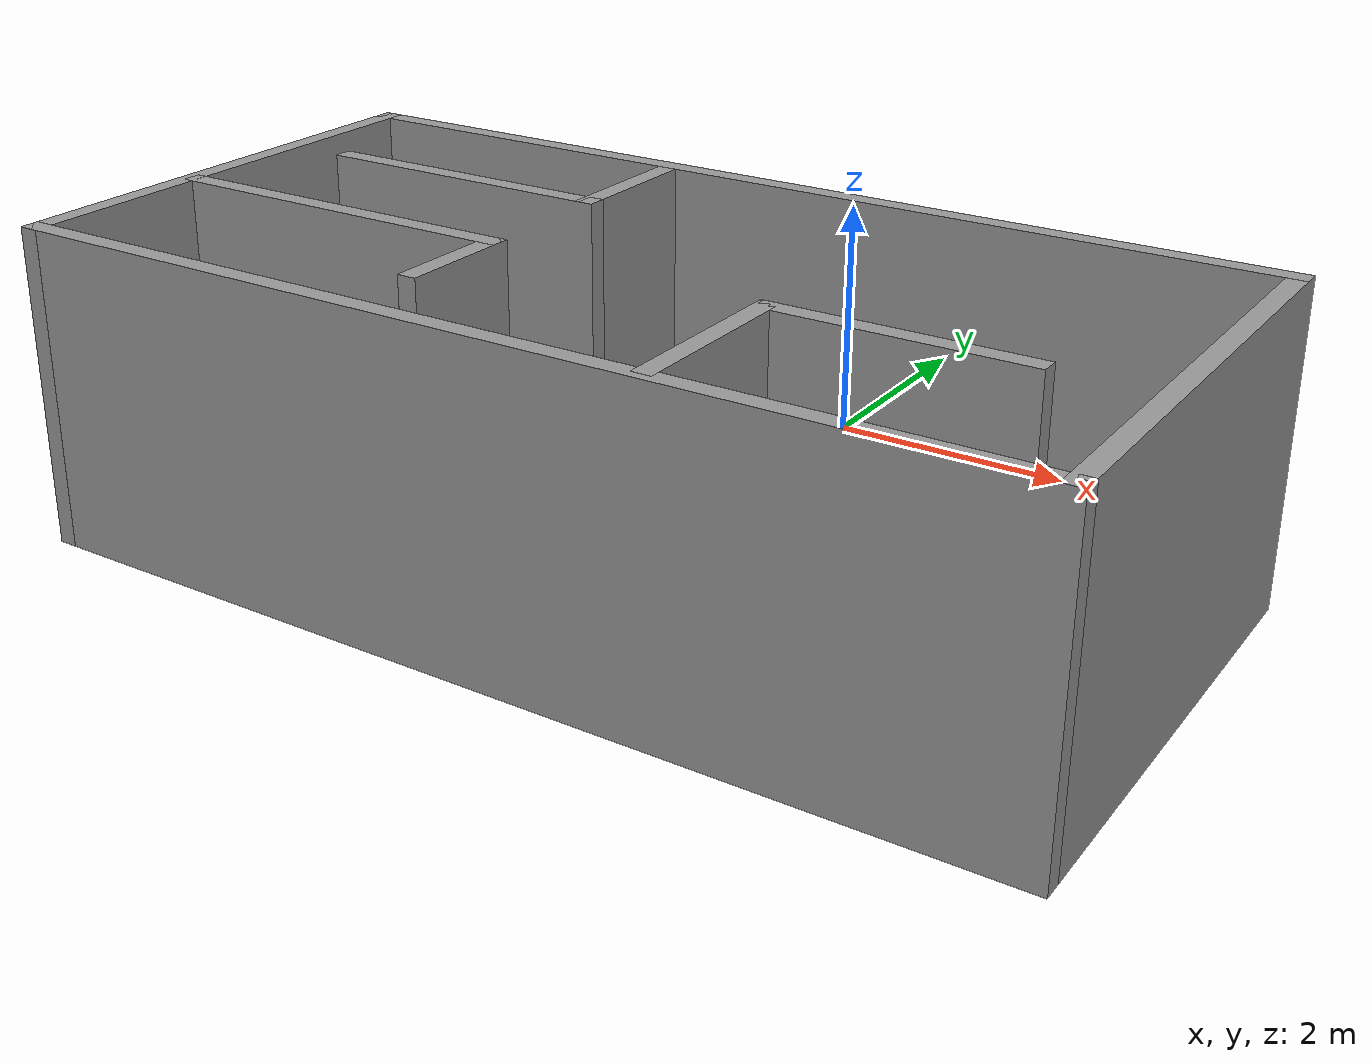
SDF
<?xml version='1.0'?>
<sdf version='1.7'>
  <model name='room'>
    <pose>0.065 -2.6175 0 0 -0 0</pose>
    <link name='Wall_10'>
      <collision name='Wall_10_Collision'>
        <geometry>
          <box>
            <size>3 0.15 2.5</size>
          </box>
        </geometry>
        <pose>0 0 1.25 0 -0 0</pose>
      </collision>
      <visual name='Wall_10_Visual'>
        <pose>0 0 1.25 0 -0 0</pose>
        <geometry>
          <box>
            <size>3 0.15 2.5</size>
          </box>
        </geometry>
        <material>
          <script>
            <uri>file://media/materials/scripts/gazebo.material</uri>
            <name>Gazebo/Grey</name>
          </script>
          <ambient>1 1 1 1</ambient>
        </material>
        <meta>
          <layer>0</layer>
        </meta>
      </visual>
      <pose>-2.43 -1.0225 0 0 -0 0</pose>
    </link>
    <link name='Wall_11'>
      <collision name='Wall_11_Collision'>
        <geometry>
          <box>
            <size>1 0.15 2.5</size>
          </box>
        </geometry>
        <pose>0 0 1.25 0 -0 0</pose>
      </collision>
      <visual name='Wall_11_Visual'>
        <pose>0 0 1.25 0 -0 0</pose>
        <geometry>
          <box>
            <size>1 0.15 2.5</size>
          </box>
        </geometry>
        <material>
          <script>
            <uri>file://media/materials/scripts/gazebo.material</uri>
            <name>Gazebo/Grey</name>
          </script>
          <ambient>1 1 1 1</ambient>
        </material>
        <meta>
          <layer>0</layer>
        </meta>
      </visual>
      <pose>-1.005 -1.4475 0 0 -0 -1.5708</pose>
    </link>
    <link name='Wall_13'>
      <collision name='Wall_13_Collision'>
        <geometry>
          <box>
            <size>1.5 0.15 2.5</size>
          </box>
        </geometry>
        <pose>0 0 1.25 0 -0 0</pose>
      </collision>
      <visual name='Wall_13_Visual'>
        <pose>0 0 1.25 0 -0 0</pose>
        <geometry>
          <box>
            <size>1.5 0.15 2.5</size>
          </box>
        </geometry>
        <material>
          <script>
            <uri>file://media/materials/scripts/gazebo.material</uri>
            <name>Gazebo/Grey</name>
          </script>
          <ambient>1 1 1 1</ambient>
        </material>
        <meta>
          <layer>0</layer>
        </meta>
      </visual>
      <pose>1.255 -1.7975 0 0 -0 1.5708</pose>
    </link>
    <link name='Wall_14'>
      <collision name='Wall_14_Collision'>
        <geometry>
          <box>
            <size>2 0.15 2.5</size>
          </box>
        </geometry>
        <pose>0 0 1.25 0 -0 0</pose>
      </collision>
      <visual name='Wall_14_Visual'>
        <pose>0 0 1.25 0 -0 0</pose>
        <geometry>
          <box>
            <size>2 0.15 2.5</size>
          </box>
        </geometry>
        <material>
          <script>
            <uri>file://media/materials/scripts/gazebo.material</uri>
            <name>Gazebo/Grey</name>
          </script>
          <ambient>1 1 1 1</ambient>
        </material>
        <meta>
          <layer>0</layer>
        </meta>
      </visual>
      <pose>2.18 -1.1225 0 0 -0 0</pose>
    </link>
    <link name='Wall_2'>
      <collision name='Wall_2_Collision'>
        <geometry>
          <box>
            <size>8 0.15 2.5</size>
          </box>
        </geometry>
        <pose>0 0 1.25 0 -0 0</pose>
      </collision>
      <visual name='Wall_2_Visual'>
        <pose>0 0 1.25 0 -0 0</pose>
        <geometry>
          <box>
            <size>8 0.15 2.5</size>
          </box>
        </geometry>
        <material>
          <script>
            <uri>file://media/materials/scripts/gazebo.material</uri>
            <name>Gazebo/Grey</name>
          </script>
          <ambient>1 1 1 1</ambient>
        </material>
        <meta>
          <layer>0</layer>
        </meta>
      </visual>
      <pose>0 1.3075 0 0 -0 0</pose>
    </link>
    <link name='Wall_3'>
      <collision name='Wall_3_Collision'>
        <geometry>
          <box>
            <size>4 0.15 2.5</size>
          </box>
        </geometry>
        <pose>0 0 1.25 0 -0 0</pose>
      </collision>
      <visual name='Wall_3_Visual'>
        <pose>0 0 1.25 0 -0 0</pose>
        <geometry>
          <box>
            <size>4 0.15 2.5</size>
          </box>
        </geometry>
        <material>
          <script>
            <uri>file://media/materials/scripts/gazebo.material</uri>
            <name>Gazebo/Grey</name>
          </script>
          <ambient>1 1 1 1</ambient>
        </material>
        <meta>
          <layer>0</layer>
        </meta>
      </visual>
      <pose>3.925 -0.6175 0 0 -0 -1.5708</pose>
    </link>
    <link name='Wall_4'>
      <collision name='Wall_4_Collision'>
        <geometry>
          <box>
            <size>8 0.15 2.5</size>
          </box>
        </geometry>
        <pose>0 0 1.25 0 -0 0</pose>
      </collision>
      <visual name='Wall_4_Visual'>
        <pose>0 0 1.25 0 -0 0</pose>
        <geometry>
          <box>
            <size>8 0.15 2.5</size>
          </box>
        </geometry>
        <material>
          <script>
            <uri>file://media/materials/scripts/gazebo.material</uri>
            <name>Gazebo/Grey</name>
          </script>
          <ambient>1 1 1 1</ambient>
        </material>
        <meta>
          <layer>0</layer>
        </meta>
      </visual>
      <pose>0 -2.5425 0 0 -0 3.14159</pose>
    </link>
    <link name='Wall_5'>
      <collision name='Wall_5_Collision'>
        <geometry>
          <box>
            <size>4 0.15 2.5</size>
          </box>
        </geometry>
        <pose>0 0 1.25 0 -0 0</pose>
      </collision>
      <visual name='Wall_5_Visual'>
        <pose>0 0 1.25 0 -0 0</pose>
        <geometry>
          <box>
            <size>4 0.15 2.5</size>
          </box>
        </geometry>
        <material>
          <script>
            <uri>file://media/materials/scripts/gazebo.material</uri>
            <name>Gazebo/Grey</name>
          </script>
          <ambient>1 1 1 1</ambient>
        </material>
        <meta>
          <layer>0</layer>
        </meta>
      </visual>
      <pose>-3.925 -0.6175 0 0 -0 1.5708</pose>
    </link>
    <link name='Wall_7'>
      <collision name='Wall_7_Collision'>
        <geometry>
          <box>
            <size>1.25 0.15 2.5</size>
          </box>
        </geometry>
        <pose>0 0 1.25 0 -0 0</pose>
      </collision>
      <visual name='Wall_7_Visual'>
        <pose>0 0 1.25 0 -0 0</pose>
        <geometry>
          <box>
            <size>1.25 0.15 2.5</size>
          </box>
        </geometry>
        <material>
          <script>
            <uri>file://media/materials/scripts/gazebo.material</uri>
            <name>Gazebo/Grey</name>
          </script>
          <ambient>1 1 1 1</ambient>
        </material>
        <meta>
          <layer>0</layer>
        </meta>
      </visual>
      <pose>-1.005 0.7075 0 0 -0 -1.5708</pose>
    </link>
    <link name='Wall_8'>
      <collision name='Wall_8_Collision'>
        <geometry>
          <box>
            <size>2.5 0.15 2.5</size>
          </box>
        </geometry>
        <pose>0 0 1.25 0 -0 0</pose>
      </collision>
      <visual name='Wall_8_Visual'>
        <pose>0 0 1.25 0 -0 0</pose>
        <geometry>
          <box>
            <size>2.5 0.15 2.5</size>
          </box>
        </geometry>
        <material>
          <script>
            <uri>file://media/materials/scripts/gazebo.material</uri>
            <name>Gazebo/Grey</name>
          </script>
          <ambient>1 1 1 1</ambient>
        </material>
        <meta>
          <layer>0</layer>
        </meta>
      </visual>
      <pose>-2.18 0.1575 0 0 -0 3.14159</pose>
    </link>
    <static>1</static>
  </model>
</sdf>
